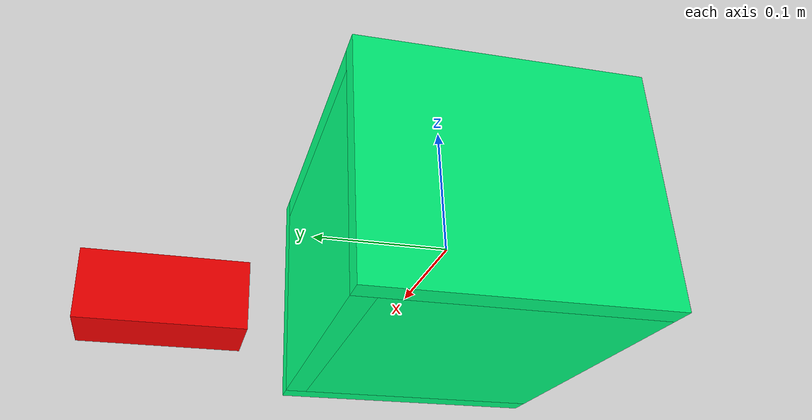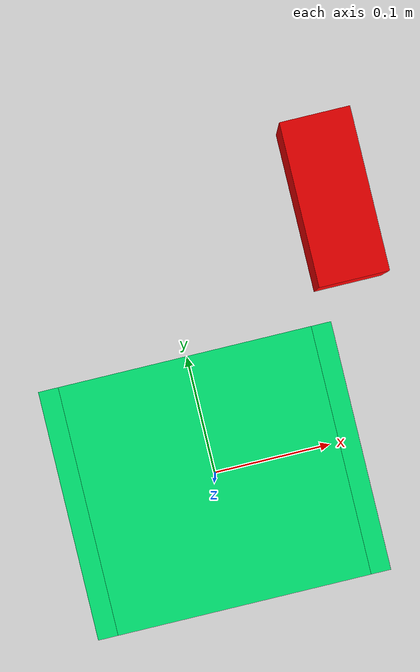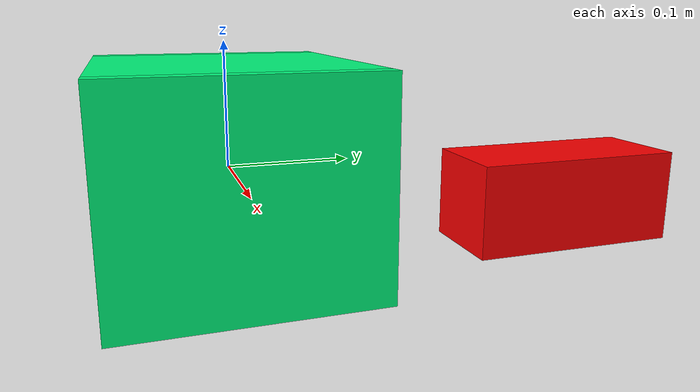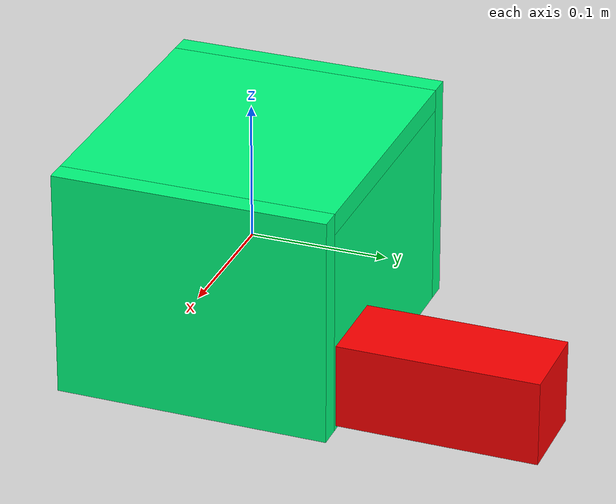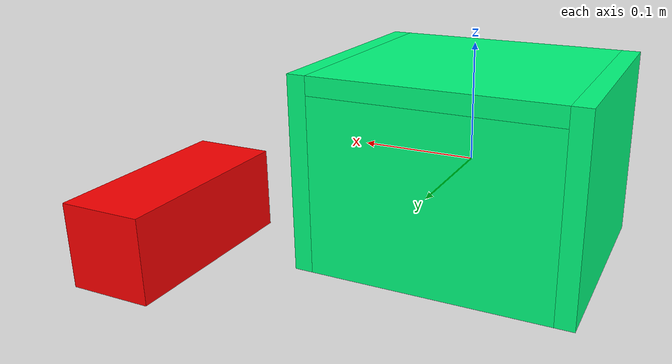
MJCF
<mujoco model="target_box">
    <worldbody>
            <body name="picked_item" pos="0 0.0 0.0" quat="1 0 0 0">
                <geom name="picked_item" pos="0.15 0.2 0.0" size="0.03 0.07 0.03" rgba="1 0 0 1.0" type="box" mass="0.05" friction="0.3 0.3 0.3" priority="1"/>
                <joint name= "picked_item_joint" type="free"/>
            </body>

        <body name="target_box" pos="0.0 0.0 0.0" quat="1 0 0 0">
            <geom name="target_box0" pos="-0.11 0 0" size="0.008 0.1 0.084" rgba="0 1 0.5 1.0" type="box" mass=".05" conaffinity="1" condim="4" contype="1"/>
            <geom name="target_box1" pos="0.11 0 0" size="0.008 0.1 0.084" rgba="0 1 0.5 1.0" type="box" mass=".05" conaffinity="1" condim="4" contype="1"/>
            <geom name="target_box2" pos="0 0.092 -0.008" size="0.102 0.008 0.076" rgba="0 1 0.5 1.0" type="box" mass=".05" conaffinity="1" condim="4" contype="1"/>
            <geom name="target_box3" pos="0 -0.008 -0.07" size="0.102 0.092 0.014" rgba="0 1 0.5 1.0" type="box" mass=".05" conaffinity="1" condim="4" contype="1"/>
            <geom name="target_box4" pos="0 0 0.076" size="0.102 0.1 0.008" rgba="0 1 0.5 1.0" type="box" mass=".05" conaffinity="1" condim="4" contype="1"/>
        </body>
    </worldbody>
</mujoco>
